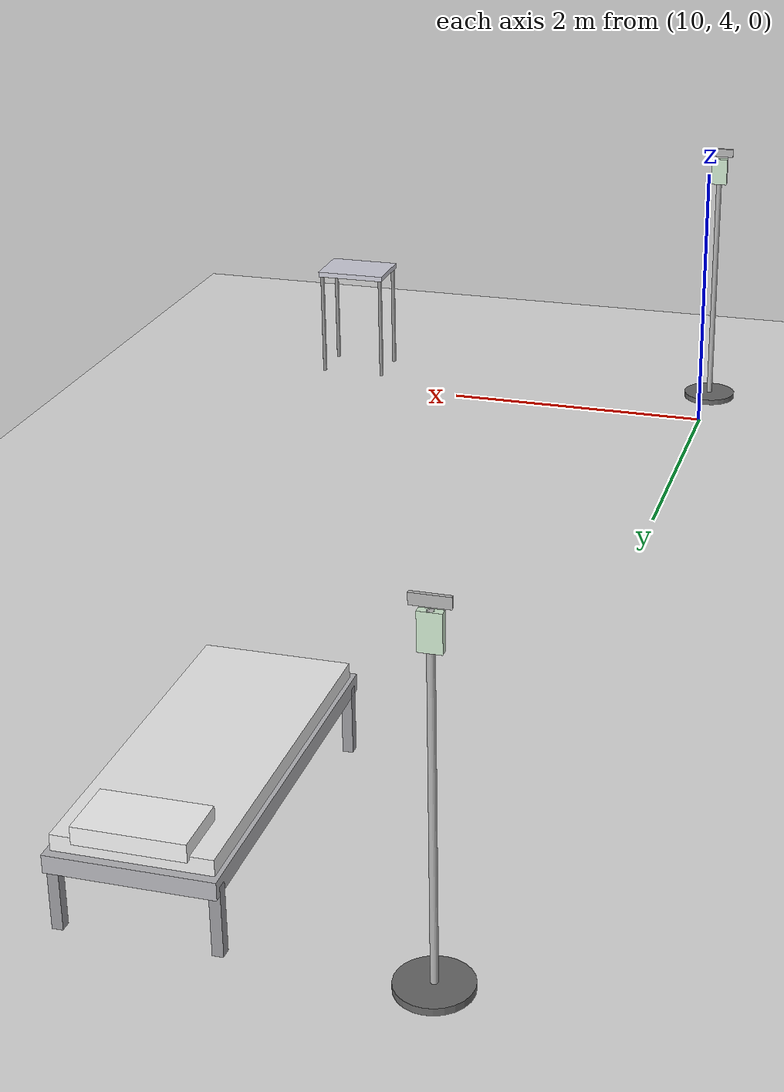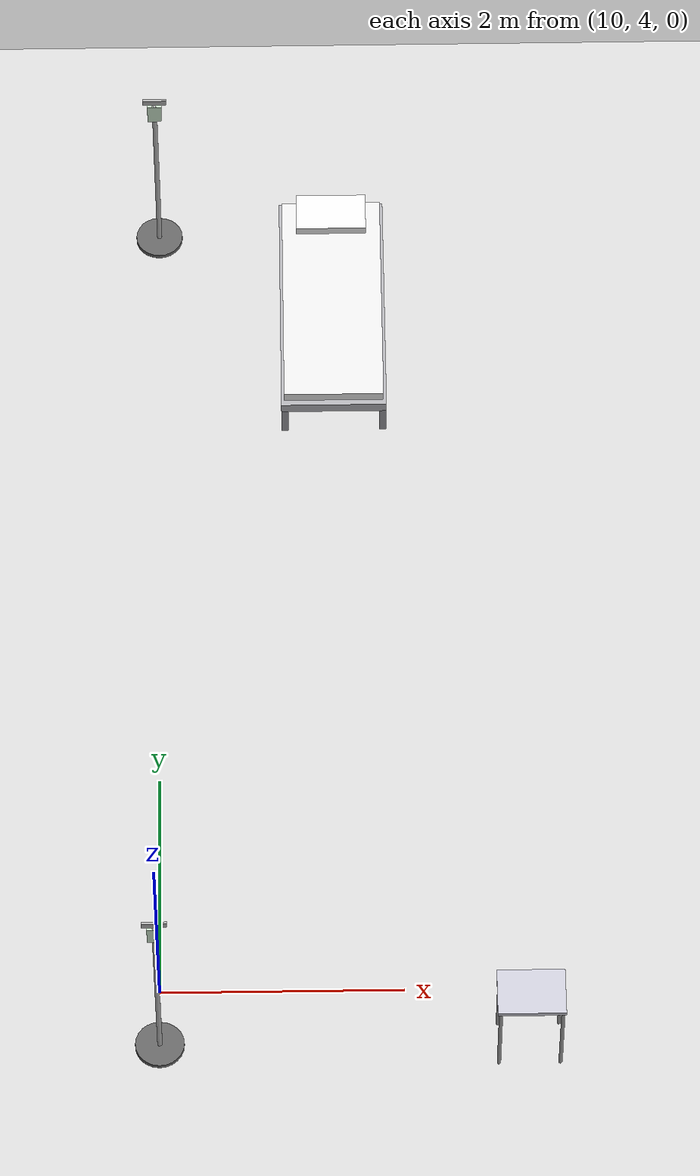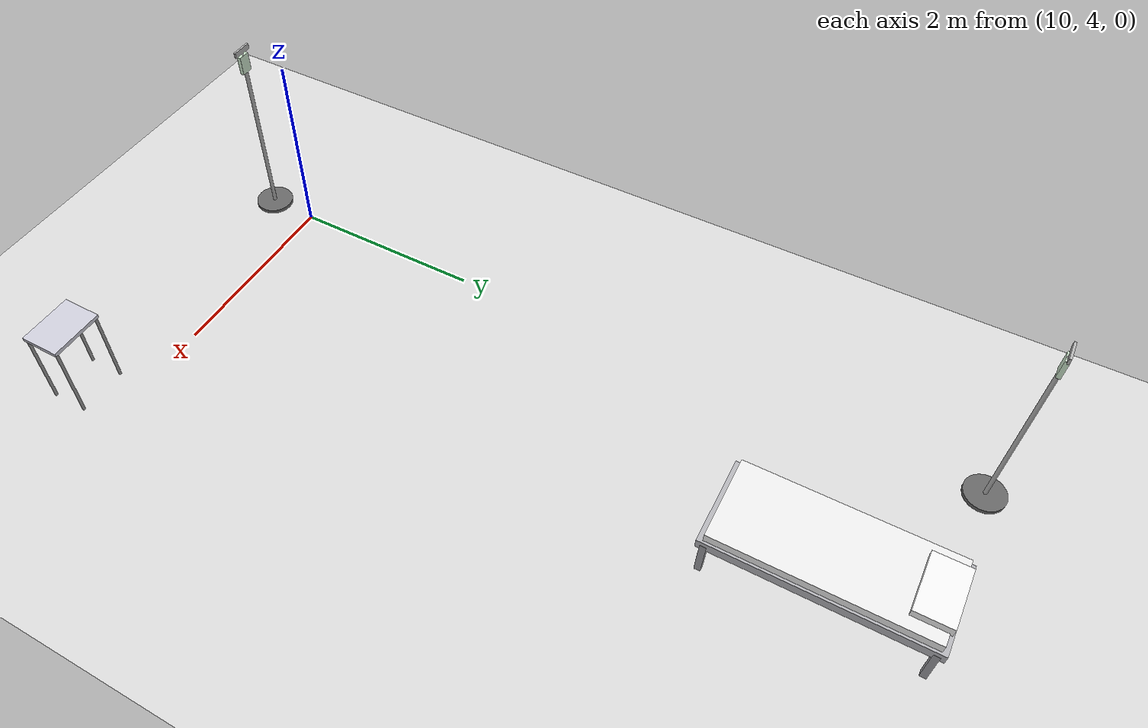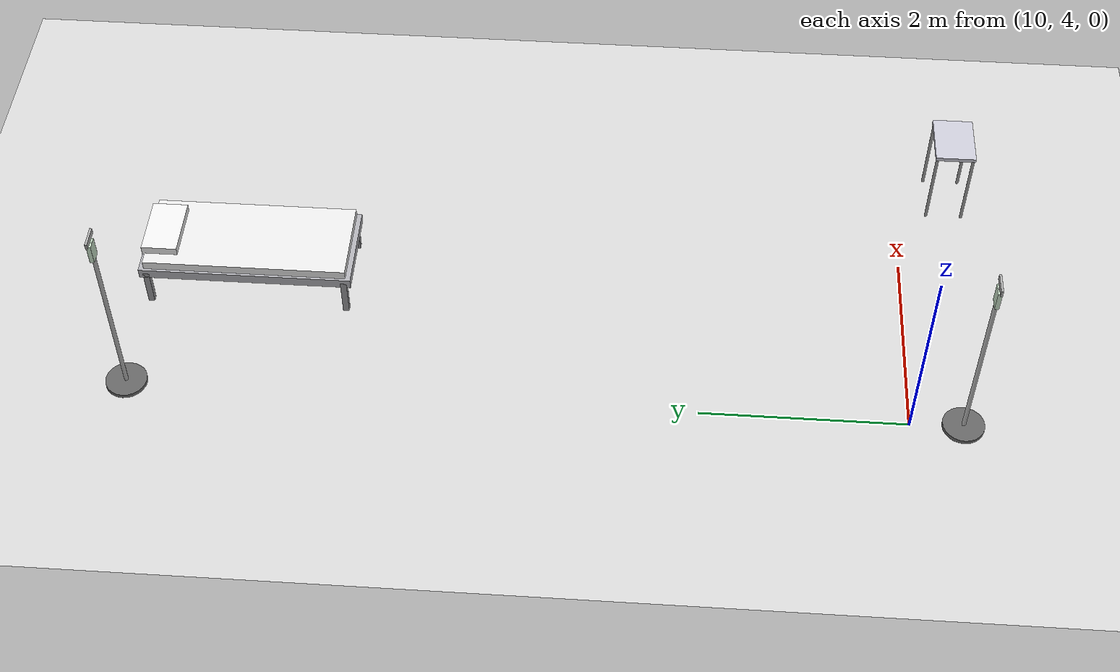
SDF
<sdf version="1.7">
 <world name="pr2_world">
  <model name="ground_plane">
   <static>1</static>
   <link name="link">
    <collision name="collision">
     <geometry><plane><normal>0 0 1</normal><size>200 200</size></plane></geometry>
     <surface><friction><ode><mu>100</mu><mu2>50</mu2></ode></friction></surface>
    </collision>
    <visual name="visual">
     <cast_shadows>0</cast_shadows>
     <geometry><plane><normal>0 0 1</normal><size>200 200</size></plane></geometry>
     <material>
      <ambient>0.85 0.85 0.85 1</ambient>
      <diffuse>0.85 0.85 0.85 1</diffuse>
      <specular>0.05 0.05 0.05 1</specular>
     </material>
    </visual>
   </link>
  </model>
  <model name="iv_5">
   <static>1</static>
   <pose>10.0 3.5 0 0 0 0</pose>
   <link name="link">
    <visual name="pole_vis">
     <pose>0 0 1.0 0 0 0</pose>
     <geometry><cylinder><radius>0.02</radius><length>2.00</length></cylinder></geometry>
     <material><ambient>0.70 0.70 0.70 1</ambient><diffuse>0.70 0.70 0.70 1</diffuse></material>
    </visual>
    <collision name="pole_col">
     <pose>0 0 1.0 0 0 0</pose>
     <geometry><cylinder><radius>0.02</radius><length>2.00</length></cylinder></geometry>
    </collision>
    <visual name="hook_vis">
     <pose>0 0 2.05 0 0 0</pose>
     <geometry><box><size>0.20 0.02 0.06</size></box></geometry>
     <material><ambient>0.70 0.70 0.70 1</ambient><diffuse>0.70 0.70 0.70 1</diffuse></material>
    </visual>
    <visual name="bag_vis">
     <pose>0 0 1.90 0 0 0</pose>
     <geometry><box><size>0.12 0.04 0.20</size></box></geometry>
     <material><ambient>0.80 0.90 0.80 1</ambient><diffuse>0.80 0.90 0.80 1</diffuse></material>
    </visual>
    <visual name="base_vis">
     <pose>0 0 0.04 0 0 0</pose>
     <geometry><cylinder><radius>0.20</radius><length>0.04</length></cylinder></geometry>
     <material><ambient>0.40 0.40 0.40 1</ambient><diffuse>0.40 0.40 0.40 1</diffuse></material>
    </visual>
    <collision name="base_col">
     <pose>0 0 0.04 0 0 0</pose>
     <geometry><cylinder><radius>0.20</radius><length>0.04</length></cylinder></geometry>
    </collision>
   </link>
  </model>
  <model name="tools_5">
   <static>1</static>
   <pose>13.0 3.5 0 0 0 0</pose>
   <link name="link">
    <visual name="tray_vis">
     <pose>0 0 0.85 0 0 0</pose>
     <geometry><box><size>0.55 0.40 0.04</size></box></geometry>
     <material>
      <ambient>0.80 0.80 0.85 1</ambient>
      <diffuse>0.80 0.80 0.85 1</diffuse>
      <specular>0.50 0.50 0.55 1</specular>
     </material>
    </visual>
    <collision name="tray_col">
     <pose>0 0 0.85 0 0 0</pose>
     <geometry><box><size>0.55 0.40 0.04</size></box></geometry>
    </collision>
    <visual name="l1">
     <pose>-0.25 -0.18 0.425 0 0 0</pose>
     <geometry><cylinder><radius>0.015</radius><length>0.85</length></cylinder></geometry>
     <material><ambient>0.60 0.60 0.60 1</ambient><diffuse>0.60 0.60 0.60 1</diffuse></material>
    </visual>
    <collision name="l1c">
     <pose>-0.25 -0.18 0.425 0 0 0</pose>
     <geometry><cylinder><radius>0.015</radius><length>0.85</length></cylinder></geometry>
    </collision>
    <visual name="l2">
     <pose>0.25 -0.18 0.425 0 0 0</pose>
     <geometry><cylinder><radius>0.015</radius><length>0.85</length></cylinder></geometry>
     <material><ambient>0.60 0.60 0.60 1</ambient><diffuse>0.60 0.60 0.60 1</diffuse></material>
    </visual>
    <collision name="l2c">
     <pose>0.25 -0.18 0.425 0 0 0</pose>
     <geometry><cylinder><radius>0.015</radius><length>0.85</length></cylinder></geometry>
    </collision>
    <visual name="l3">
     <pose>-0.25 0.18 0.425 0 0 0</pose>
     <geometry><cylinder><radius>0.015</radius><length>0.85</length></cylinder></geometry>
     <material><ambient>0.60 0.60 0.60 1</ambient><diffuse>0.60 0.60 0.60 1</diffuse></material>
    </visual>
    <collision name="l3c">
     <pose>-0.25 0.18 0.425 0 0 0</pose>
     <geometry><cylinder><radius>0.015</radius><length>0.85</length></cylinder></geometry>
    </collision>
    <visual name="l4">
     <pose>0.25 0.18 0.425 0 0 0</pose>
     <geometry><cylinder><radius>0.015</radius><length>0.85</length></cylinder></geometry>
     <material><ambient>0.60 0.60 0.60 1</ambient><diffuse>0.60 0.60 0.60 1</diffuse></material>
    </visual>
    <collision name="l4c">
     <pose>0.25 0.18 0.425 0 0 0</pose>
     <geometry><cylinder><radius>0.015</radius><length>0.85</length></cylinder></geometry>
    </collision>
   </link>
  </model>
  <model name="bed_6">
   <static>1</static>
   <pose>11.5 10.5 0 0 0 0</pose>
   <link name="link">
    <visual name="frame_vis">
     <pose>0 0 0.40 0 0 0</pose>
     <geometry><box><size>0.90 2.10 0.10</size></box></geometry>
     <material>
      <ambient>0.70 0.70 0.72 1</ambient>
      <diffuse>0.70 0.70 0.72 1</diffuse>
      <specular>0.30 0.30 0.32 1</specular>
     </material>
    </visual>
    <collision name="frame_col">
     <pose>0 0 0.40 0 0 0</pose>
     <geometry><box><size>0.90 2.10 0.10</size></box></geometry>
    </collision>
    <visual name="mattress_vis">
     <pose>0 0 0.48 0 0 0</pose>
     <geometry><box><size>0.85 2.00 0.12</size></box></geometry>
     <material><ambient>0.92 0.92 0.92 1</ambient><diffuse>0.92 0.92 0.92 1</diffuse></material>
    </visual>
    <visual name="pillow_vis">
     <pose>0 0.85 0.57 0 0 0</pose>
     <geometry><box><size>0.60 0.35 0.10</size></box></geometry>
     <material><ambient>0.95 0.95 0.95 1</ambient><diffuse>0.95 0.95 0.95 1</diffuse></material>
    </visual>
    <visual name="l1">
     <pose>-0.42 -0.98 0.20 0 0 0</pose>
     <geometry><box><size>0.06 0.06 0.40</size></box></geometry>
     <material><ambient>0.60 0.60 0.62 1</ambient><diffuse>0.60 0.60 0.62 1</diffuse></material>
    </visual>
    <visual name="l2">
     <pose>0.42 -0.98 0.20 0 0 0</pose>
     <geometry><box><size>0.06 0.06 0.40</size></box></geometry>
     <material><ambient>0.60 0.60 0.62 1</ambient><diffuse>0.60 0.60 0.62 1</diffuse></material>
    </visual>
    <visual name="l3">
     <pose>-0.42 0.98 0.20 0 0 0</pose>
     <geometry><box><size>0.06 0.06 0.40</size></box></geometry>
     <material><ambient>0.60 0.60 0.62 1</ambient><diffuse>0.60 0.60 0.62 1</diffuse></material>
    </visual>
    <visual name="l4">
     <pose>0.42 0.98 0.20 0 0 0</pose>
     <geometry><box><size>0.06 0.06 0.40</size></box></geometry>
     <material><ambient>0.60 0.60 0.62 1</ambient><diffuse>0.60 0.60 0.62 1</diffuse></material>
    </visual>
   </link>
  </model>
  <model name="iv_6">
   <static>1</static>
   <pose>10.0 11.5 0 0 0 0</pose>
   <link name="link">
    <visual name="pole_vis">
     <pose>0 0 1.0 0 0 0</pose>
     <geometry><cylinder><radius>0.02</radius><length>2.00</length></cylinder></geometry>
     <material><ambient>0.70 0.70 0.70 1</ambient><diffuse>0.70 0.70 0.70 1</diffuse></material>
    </visual>
    <collision name="pole_col">
     <pose>0 0 1.0 0 0 0</pose>
     <geometry><cylinder><radius>0.02</radius><length>2.00</length></cylinder></geometry>
    </collision>
    <visual name="hook_vis">
     <pose>0 0 2.05 0 0 0</pose>
     <geometry><box><size>0.20 0.02 0.06</size></box></geometry>
     <material><ambient>0.70 0.70 0.70 1</ambient><diffuse>0.70 0.70 0.70 1</diffuse></material>
    </visual>
    <visual name="bag_vis">
     <pose>0 0 1.90 0 0 0</pose>
     <geometry><box><size>0.12 0.04 0.20</size></box></geometry>
     <material><ambient>0.80 0.90 0.80 1</ambient><diffuse>0.80 0.90 0.80 1</diffuse></material>
    </visual>
    <visual name="base_vis">
     <pose>0 0 0.04 0 0 0</pose>
     <geometry><cylinder><radius>0.20</radius><length>0.04</length></cylinder></geometry>
     <material><ambient>0.40 0.40 0.40 1</ambient><diffuse>0.40 0.40 0.40 1</diffuse></material>
    </visual>
    <collision name="base_col">
     <pose>0 0 0.04 0 0 0</pose>
     <geometry><cylinder><radius>0.20</radius><length>0.04</length></cylinder></geometry>
    </collision>
   </link>
  </model>
 </world>
</sdf>
